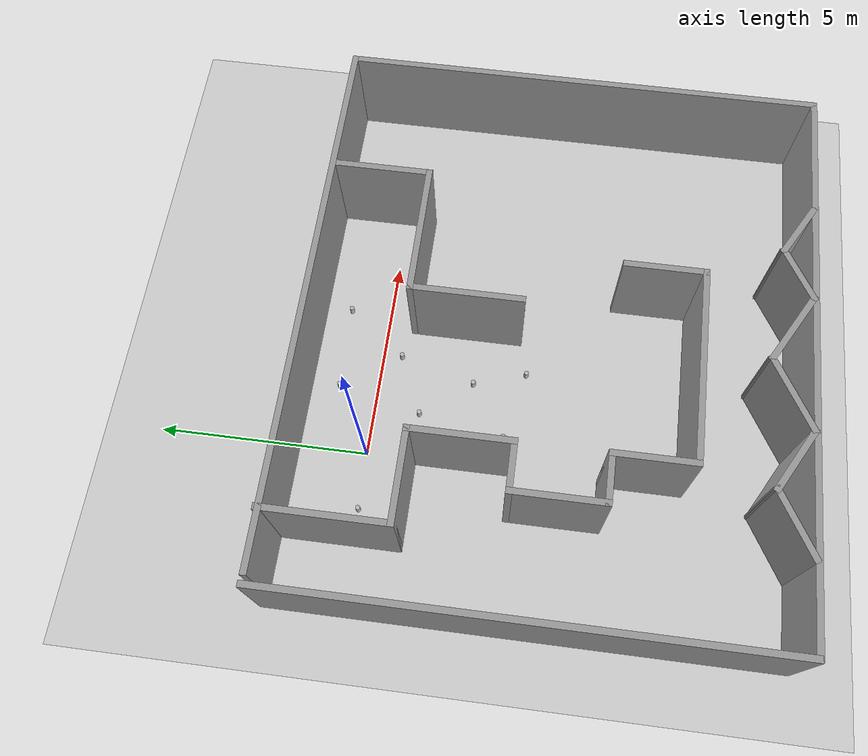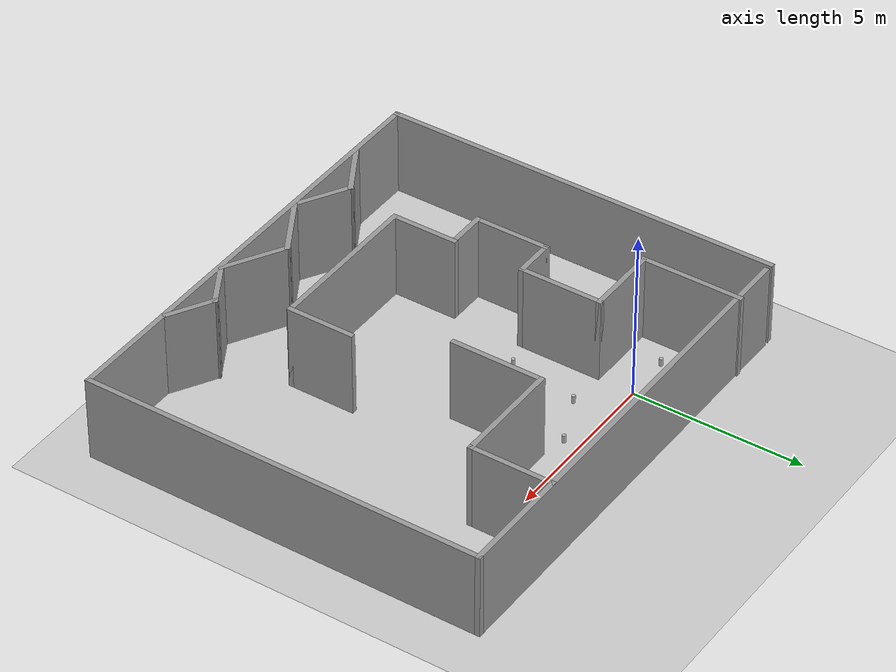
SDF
<sdf version="1.7">
 <world name="default">
  <light name="sun" type="directional">
   <pose>0 0 10 0 -0 0</pose>
   <diffuse>0.8 0.8 0.8 1</diffuse>
   <specular>0.2 0.2 0.2 1</specular>
   <attenuation>
    <range>1000</range>
    <constant>0.9</constant>
    <linear>0.01</linear>
    <quadratic>0.001</quadratic>
   </attenuation>
   <direction>-0.5 0.1 -0.9</direction>
   <spot><inner_angle>0</inner_angle><outer_angle>0</outer_angle><falloff>0</falloff></spot>
  </light>
  <model name="ground_plane">
   <static>1</static>
   <link name="link">
    <collision name="collision">
     <geometry><plane><normal>0 0 1</normal><size>100 100</size></plane></geometry>
     <surface><friction><ode><mu>100</mu><mu2>50</mu2></ode></friction></surface>
    </collision>
    <visual name="visual">
     <cast_shadows>0</cast_shadows>
     <geometry><plane><normal>0 0 1</normal><size>100 100</size></plane></geometry>
     <material>
      <script><uri>file://media/materials/scripts/gazebo.material</uri><name>Gazebo/Grey</name></script>
     </material>
    </visual>
   </link>
  </model>
  <gravity>0 0 -9.8</gravity>
  <magnetic_field>6e-06 2.3e-05 -4.2e-05</magnetic_field>
  <atmosphere type="adiabatic"/>
  <physics type="ode">
   <max_step_size>0.001</max_step_size>
   <real_time_factor>1</real_time_factor>
   <real_time_update_rate>1000</real_time_update_rate>
  </physics>
  <scene><ambient>0.4 0.4 0.4 1</ambient><background>0.7 0.7 0.7 1</background><shadows>1</shadows></scene>
  <spherical_coordinates>
   <surface_model>EARTH_WGS84</surface_model>
   <latitude_deg>0</latitude_deg>
   <longitude_deg>0</longitude_deg>
   <elevation>0</elevation>
   <heading_deg>0</heading_deg>
  </spherical_coordinates>
  <model name="walls">
   <pose>2.94182 -4.0688 0 0 -0 0</pose>
   <link name="Wall_11">
    <collision name="Wall_11_Collision">
     <geometry><box><size>3 0.15 2.5</size></box></geometry>
     <pose>0 0 1.25 0 -0 0</pose>
    </collision>
    <visual name="Wall_11_Visual">
     <pose>0 0 1.25 0 -0 0</pose>
     <geometry><box><size>3 0.15 2.5</size></box></geometry>
     <material>
      <script><uri>file://media/materials/scripts/gazebo.material</uri><name>Gazebo/Grey</name></script>
      <ambient>1 1 1 1</ambient>
     </material>
     <meta><layer>0</layer></meta>
    </visual>
    <pose>-5.07342 4.39742 0 0 -0 -1.5708</pose>
   </link>
   <link name="Wall_12">
    <collision name="Wall_12_Collision">
     <geometry><box><size>2.25 0.15 2.5</size></box></geometry>
     <pose>0 0 1.25 0 -0 0</pose>
    </collision>
    <visual name="Wall_12_Visual">
     <pose>0 0 1.25 0 -0 0</pose>
     <geometry><box><size>2.25 0.15 2.5</size></box></geometry>
     <material>
      <script><uri>file://media/materials/scripts/gazebo.material</uri><name>Gazebo/Grey</name></script>
      <ambient>1 1 1 1</ambient>
     </material>
     <meta><layer>0</layer></meta>
    </visual>
    <pose>-4.02342 2.97242 0 0 -0 0</pose>
   </link>
   <link name="Wall_13">
    <collision name="Wall_13_Collision">
     <geometry><box><size>2.5 0.15 2.5</size></box></geometry>
     <pose>0 0 1.25 0 -0 0</pose>
    </collision>
    <visual name="Wall_13_Visual">
     <pose>0 0 1.25 0 -0 0</pose>
     <geometry><box><size>2.5 0.15 2.5</size></box></geometry>
     <material>
      <script><uri>file://media/materials/scripts/gazebo.material</uri><name>Gazebo/Grey</name></script>
      <ambient>1 1 1 1</ambient>
     </material>
     <meta><layer>0</layer></meta>
    </visual>
    <pose>-2.97342 1.79742 0 0 -0 -1.5708</pose>
   </link>
   <link name="Wall_14">
    <collision name="Wall_14_Collision">
     <geometry><box><size>1.25 0.15 2.5</size></box></geometry>
     <pose>0 0 1.25 0 -0 0</pose>
    </collision>
    <visual name="Wall_14_Visual">
     <pose>0 0 1.25 0 -0 0</pose>
     <geometry><box><size>1.25 0.15 2.5</size></box></geometry>
     <material>
      <script><uri>file://media/materials/scripts/gazebo.material</uri><name>Gazebo/Grey</name></script>
      <ambient>1 1 1 1</ambient>
     </material>
     <meta><layer>0</layer></meta>
    </visual>
    <pose>-3.52342 0.622418 0 0 -0 3.14159</pose>
   </link>
   <link name="Wall_15">
    <collision name="Wall_15_Collision">
     <geometry><box><size>2.25 0.15 2.5</size></box></geometry>
     <pose>0 0 1.25 0 -0 0</pose>
    </collision>
    <visual name="Wall_15_Visual">
     <pose>0 0 1.25 0 -0 0</pose>
     <geometry><box><size>2.25 0.15 2.5</size></box></geometry>
     <material>
      <script><uri>file://media/materials/scripts/gazebo.material</uri><name>Gazebo/Grey</name></script>
      <ambient>1 1 1 1</ambient>
     </material>
     <meta><layer>0</layer></meta>
    </visual>
    <pose>-4.07342 -0.427582 0 0 -0 -1.5708</pose>
   </link>
   <link name="Wall_16">
    <collision name="Wall_16_Collision">
     <geometry><box><size>1.25 0.15 2.5</size></box></geometry>
     <pose>0 0 1.25 0 -0 0</pose>
    </collision>
    <visual name="Wall_16_Visual">
     <pose>0 0 1.25 0 -0 0</pose>
     <geometry><box><size>1.25 0.15 2.5</size></box></geometry>
     <material>
      <script><uri>file://media/materials/scripts/gazebo.material</uri><name>Gazebo/Grey</name></script>
      <ambient>1 1 1 1</ambient>
     </material>
     <meta><layer>0</layer></meta>
    </visual>
    <pose>-3.52342 -1.47758 0 0 -0 0</pose>
   </link>
   <link name="Wall_17">
    <collision name="Wall_17_Collision">
     <geometry><box><size>2 0.15 2.5</size></box></geometry>
     <pose>0 0 1.25 0 -0 0</pose>
    </collision>
    <visual name="Wall_17_Visual">
     <pose>0 0 1.25 0 -0 0</pose>
     <geometry><box><size>2 0.15 2.5</size></box></geometry>
     <material>
      <script><uri>file://media/materials/scripts/gazebo.material</uri><name>Gazebo/Grey</name></script>
      <ambient>1 1 1 1</ambient>
     </material>
     <meta><layer>0</layer></meta>
    </visual>
    <pose>-2.97342 -2.40258 0 0 -0 -1.5708</pose>
   </link>
   <link name="Wall_18">
    <collision name="Wall_18_Collision">
     <geometry><box><size>4.75 0.15 2.5</size></box></geometry>
     <pose>0 0 1.25 0 -0 0</pose>
    </collision>
    <visual name="Wall_18_Visual">
     <pose>0 0 1.25 0 -0 0</pose>
     <geometry><box><size>4.75 0.15 2.5</size></box></geometry>
     <material>
      <script><uri>file://media/materials/scripts/gazebo.material</uri><name>Gazebo/Grey</name></script>
      <ambient>1 1 1 1</ambient>
     </material>
     <meta><layer>0</layer></meta>
    </visual>
    <pose>-0.673416 -3.32758 0 0 -0 0</pose>
   </link>
   <link name="Wall_19">
    <collision name="Wall_19_Collision">
     <geometry><box><size>2 0.15 2.5</size></box></geometry>
     <pose>0 0 1.25 0 -0 0</pose>
    </collision>
    <visual name="Wall_19_Visual">
     <pose>0 0 1.25 0 -0 0</pose>
     <geometry><box><size>2 0.15 2.5</size></box></geometry>
     <material>
      <script><uri>file://media/materials/scripts/gazebo.material</uri><name>Gazebo/Grey</name></script>
      <ambient>1 1 1 1</ambient>
     </material>
     <meta><layer>0</layer></meta>
    </visual>
    <pose>1.62658 -2.40258 0 0 -0 1.5708</pose>
   </link>
   <link name="Wall_23">
    <collision name="Wall_23_Collision">
     <geometry><box><size>2.5 0.15 2.5</size></box></geometry>
     <pose>0 0 1.25 0 -0 0</pose>
    </collision>
    <visual name="Wall_23_Visual">
     <pose>0 0 1.25 0 -0 0</pose>
     <geometry><box><size>2.5 0.15 2.5</size></box></geometry>
     <material>
      <script><uri>file://media/materials/scripts/gazebo.material</uri><name>Gazebo/Grey</name></script>
      <ambient>1 1 1 1</ambient>
     </material>
     <meta><layer>0</layer></meta>
    </visual>
    <pose>3.50717 4.58824 0 0 -0 -1.5708</pose>
   </link>
   <link name="Wall_24">
    <collision name="Wall_24_Collision">
     <geometry><box><size>3.25 0.15 2.5</size></box></geometry>
     <pose>0 0 1.25 0 -0 0</pose>
    </collision>
    <visual name="Wall_24_Visual">
     <pose>0 0 1.25 0 -0 0</pose>
     <geometry><box><size>3.25 0.15 2.5</size></box></geometry>
     <material>
      <script><uri>file://media/materials/scripts/gazebo.material</uri><name>Gazebo/Grey</name></script>
      <ambient>1 1 1 1</ambient>
     </material>
     <meta><layer>0</layer></meta>
    </visual>
    <pose>1.95717 3.41324 0 0 -0 3.14159</pose>
   </link>
   <link name="Wall_25">
    <collision name="Wall_25_Collision">
     <geometry><box><size>2.75 0.15 2.5</size></box></geometry>
     <pose>0 0 1.25 0 -0 0</pose>
    </collision>
    <visual name="Wall_25_Visual">
     <pose>0 0 1.25 0 -0 0</pose>
     <geometry><box><size>2.75 0.15 2.5</size></box></geometry>
     <material>
      <script><uri>file://media/materials/scripts/gazebo.material</uri><name>Gazebo/Grey</name></script>
      <ambient>1 1 1 1</ambient>
     </material>
     <meta><layer>0</layer></meta>
    </visual>
    <pose>0.40717 2.11324 0 0 -0 -1.5708</pose>
   </link>
   <link name="Wall_29">
    <collision name="Wall_29_Collision">
     <geometry><box><size>1.75 0.15 2.5</size></box></geometry>
     <pose>0 0 1.25 0 -0 0</pose>
    </collision>
    <visual name="Wall_29_Visual">
     <pose>0 0 1.25 0 -0 0</pose>
     <geometry><box><size>1.75 0.15 2.5</size></box></geometry>
     <material>
      <script><uri>file://media/materials/scripts/gazebo.material</uri><name>Gazebo/Grey</name></script>
      <ambient>1 1 1 1</ambient>
     </material>
     <meta><layer>0</layer></meta>
    </visual>
    <pose>-4.02554 -5.37617 0 0 -0 0.523599</pose>
   </link>
   <link name="Wall_30">
    <collision name="Wall_30_Collision">
     <geometry><box><size>1.75 0.15 2.5</size></box></geometry>
     <pose>0 0 1.25 0 -0 0</pose>
    </collision>
    <visual name="Wall_30_Visual">
     <pose>0 0 1.25 0 -0 0</pose>
     <geometry><box><size>1.75 0.15 2.5</size></box></geometry>
     <material>
      <script><uri>file://media/materials/scripts/gazebo.material</uri><name>Gazebo/Grey</name></script>
      <ambient>1 1 1 1</ambient>
     </material>
     <meta><layer>0</layer></meta>
    </visual>
    <pose>-2.6399 -5.37617 0 0 -0 -0.523599</pose>
   </link>
   <link name="Wall_31">
    <collision name="Wall_31_Collision">
     <geometry><box><size>2 0.15 2.5</size></box></geometry>
     <pose>0 0 1.25 0 -0 0</pose>
    </collision>
    <visual name="Wall_31_Visual">
     <pose>0 0 1.25 0 -0 0</pose>
     <geometry><box><size>2 0.15 2.5</size></box></geometry>
     <material>
      <script><uri>file://media/materials/scripts/gazebo.material</uri><name>Gazebo/Grey</name></script>
      <ambient>1 1 1 1</ambient>
     </material>
     <meta><layer>0</layer></meta>
    </visual>
    <pose>-1.146 -5.31367 0 0 -0 0.523599</pose>
   </link>
   <link name="Wall_32">
    <collision name="Wall_32_Collision">
     <geometry><box><size>2 0.15 2.5</size></box></geometry>
     <pose>0 0 1.25 0 -0 0</pose>
    </collision>
    <visual name="Wall_32_Visual">
     <pose>0 0 1.25 0 -0 0</pose>
     <geometry><box><size>2 0.15 2.5</size></box></geometry>
     <material>
      <script><uri>file://media/materials/scripts/gazebo.material</uri><name>Gazebo/Grey</name></script>
      <ambient>1 1 1 1</ambient>
     </material>
     <meta><layer>0</layer></meta>
    </visual>
    <pose>0.456144 -5.31367 0 0 -0 -0.523599</pose>
   </link>
   <link name="Wall_33">
    <collision name="Wall_33_Collision">
     <geometry><box><size>1.5 0.15 2.5</size></box></geometry>
     <pose>0 0 1.25 0 -0 0</pose>
    </collision>
    <visual name="Wall_33_Visual">
     <pose>0 0 1.25 0 -0 0</pose>
     <geometry><box><size>1.5 0.15 2.5</size></box></geometry>
     <material>
      <script><uri>file://media/materials/scripts/gazebo.material</uri><name>Gazebo/Grey</name></script>
      <ambient>1 1 1 1</ambient>
     </material>
     <meta><layer>0</layer></meta>
    </visual>
    <pose>1.84179 -5.43867 0 0 -0 0.523599</pose>
   </link>
   <link name="Wall_34">
    <collision name="Wall_34_Collision">
     <geometry><box><size>1.5 0.15 2.5</size></box></geometry>
     <pose>0 0 1.25 0 -0 0</pose>
    </collision>
    <visual name="Wall_34_Visual">
     <pose>0 0 1.25 0 -0 0</pose>
     <geometry><box><size>1.5 0.15 2.5</size></box></geometry>
     <material>
      <script><uri>file://media/materials/scripts/gazebo.material</uri><name>Gazebo/Grey</name></script>
      <ambient>1 1 1 1</ambient>
     </material>
     <meta><layer>0</layer></meta>
    </visual>
    <pose>3.01092 -5.43867 0 0 -0 -0.523599</pose>
   </link>
   <link name="Wall_6">
    <collision name="Wall_6_Collision">
     <geometry><box><size>11.75 0.15 2.5</size></box></geometry>
     <pose>0 0 1.25 0 -0 0</pose>
    </collision>
    <visual name="Wall_6_Visual">
     <pose>0 0 1.25 0 -0 0</pose>
     <geometry><box><size>11.75 0.15 2.5</size></box></geometry>
     <material>
      <script><uri>file://media/materials/scripts/gazebo.material</uri><name>Gazebo/Grey</name></script>
      <ambient>1 1 1 1</ambient>
     </material>
     <meta><layer>0</layer></meta>
    </visual>
    <pose>-6.675 -0.022417 0 0 -0 -1.5708</pose>
   </link>
   <link name="Wall_7">
    <collision name="Wall_7_Collision">
     <geometry><box><size>13.5 0.15 2.5</size></box></geometry>
     <pose>0 0 1.25 0 -0 0</pose>
    </collision>
    <visual name="Wall_7_Visual">
     <pose>0 0 1.25 0 -0 0</pose>
     <geometry><box><size>13.5 0.15 2.5</size></box></geometry>
     <material>
      <script><uri>file://media/materials/scripts/gazebo.material</uri><name>Gazebo/Grey</name></script>
      <ambient>1 1 1 1</ambient>
     </material>
     <meta><layer>0</layer></meta>
    </visual>
    <pose>0 -5.82242 0 0 -0 0</pose>
   </link>
   <link name="Wall_8">
    <collision name="Wall_8_Collision">
     <geometry><box><size>11.75 0.15 2.5</size></box></geometry>
     <pose>0 0 1.25 0 -0 0</pose>
    </collision>
    <visual name="Wall_8_Visual">
     <pose>0 0 1.25 0 -0 0</pose>
     <geometry><box><size>11.75 0.15 2.5</size></box></geometry>
     <material>
      <script><uri>file://media/materials/scripts/gazebo.material</uri><name>Gazebo/Grey</name></script>
      <ambient>1 1 1 1</ambient>
     </material>
     <meta><layer>0</layer></meta>
    </visual>
    <pose>6.675 -0.022417 0 0 -0 1.5708</pose>
   </link>
   <link name="Wall_9">
    <collision name="Wall_9_Collision">
     <geometry><box><size>13.25 0.15 2.5</size></box></geometry>
     <pose>0 0 1.25 0 -0 0</pose>
    </collision>
    <visual name="Wall_9_Visual">
     <pose>0 0 1.25 0 -0 0</pose>
     <geometry><box><size>13.25 0.15 2.5</size></box></geometry>
     <material>
      <script><uri>file://media/materials/scripts/gazebo.material</uri><name>Gazebo/Grey</name></script>
      <ambient>1 1 1 1</ambient>
     </material>
     <meta><layer>0</layer></meta>
    </visual>
    <pose>0.125 5.77758 0 0 -0 3.14159</pose>
   </link>
   <static>1</static>
  </model>
  <model name="beer">
   <link name="link">
    <pose>0 0 0.115 0 -0 0</pose>
    <inertial>
     <mass>0.39</mass>
     <inertia><ixx>0.00058</ixx><ixy>0</ixy><ixz>0</ixz><iyy>0.00058</iyy><iyz>0</iyz><izz>0.00019</izz></inertia>
    </inertial>
    <collision name="collision">
     <geometry><cylinder><radius>0.055</radius><length>0.23</length></cylinder></geometry>
    </collision>
    <visual name="visual">
     <geometry><cylinder><radius>0.055</radius><length>0.23</length></cylinder></geometry>
     <material>
      <script>
       <uri>model://beer/materials/scripts</uri>
       <uri>model://beer/materials/textures</uri>
       <name>Beer/Diffuse</name>
      </script>
     </material>
    </visual>
   </link>
   <pose>1.63604 0.953295 -2e-06 0 -0 -2e-05</pose>
  </model>
  <model name="beer_0">
   <link name="link">
    <pose>0 0 0.115 0 -0 0</pose>
    <inertial>
     <mass>0.39</mass>
     <inertia><ixx>0.00058</ixx><ixy>0</ixy><ixz>0</ixz><iyy>0.00058</iyy><iyz>0</iyz><izz>0.00019</izz></inertia>
    </inertial>
    <collision name="collision">
     <geometry><cylinder><radius>0.055</radius><length>0.23</length></cylinder></geometry>
    </collision>
    <visual name="visual">
     <geometry><cylinder><radius>0.055</radius><length>0.23</length></cylinder></geometry>
     <material>
      <script>
       <uri>model://beer/materials/scripts</uri>
       <uri>model://beer/materials/textures</uri>
       <name>Beer/Diffuse</name>
      </script>
     </material>
    </visual>
   </link>
   <pose>1.15153 -1.07924 -7e-06 -1e-06 -0 -1.9e-05</pose>
  </model>
  <model name="beer_1">
   <link name="link">
    <pose>0 0 0.115 0 -0 0</pose>
    <inertial>
     <mass>0.39</mass>
     <inertia><ixx>0.00058</ixx><ixy>0</ixy><ixz>0</ixz><iyy>0.00058</iyy><iyz>0</iyz><izz>0.00019</izz></inertia>
    </inertial>
    <collision name="collision">
     <geometry><cylinder><radius>0.055</radius><length>0.23</length></cylinder></geometry>
    </collision>
    <visual name="visual">
     <geometry><cylinder><radius>0.055</radius><length>0.23</length></cylinder></geometry>
     <material>
      <script>
       <uri>model://beer/materials/scripts</uri>
       <uri>model://beer/materials/textures</uri>
       <name>Beer/Diffuse</name>
      </script>
     </material>
    </visual>
   </link>
   <pose>2.57885 -0.441564 -2e-06 0 -0 -1.8e-05</pose>
  </model>
  <model name="beer_2">
   <link name="link">
    <pose>0 0 0.115 0 -0 0</pose>
    <inertial>
     <mass>0.39</mass>
     <inertia><ixx>0.00058</ixx><ixy>0</ixy><ixz>0</ixz><iyy>0.00058</iyy><iyz>0</iyz><izz>0.00019</izz></inertia>
    </inertial>
    <collision name="collision">
     <geometry><cylinder><radius>0.055</radius><length>0.23</length></cylinder></geometry>
    </collision>
    <visual name="visual">
     <geometry><cylinder><radius>0.055</radius><length>0.23</length></cylinder></geometry>
     <material>
      <script>
       <uri>model://beer/materials/scripts</uri>
       <uri>model://beer/materials/textures</uri>
       <name>Beer/Diffuse</name>
      </script>
     </material>
    </visual>
   </link>
   <pose>-1.34961 -0.019421 -7e-06 -1e-06 -0 -1.7e-05</pose>
  </model>
  <model name="beer_3">
   <link name="link">
    <pose>0 0 0.115 0 -0 0</pose>
    <inertial>
     <mass>0.39</mass>
     <inertia><ixx>0.00058</ixx><ixy>0</ixy><ixz>0</ixz><iyy>0.00058</iyy><iyz>0</iyz><izz>0.00019</izz></inertia>
    </inertial>
    <collision name="collision">
     <geometry><cylinder><radius>0.055</radius><length>0.23</length></cylinder></geometry>
    </collision>
    <visual name="visual">
     <geometry><cylinder><radius>0.055</radius><length>0.23</length></cylinder></geometry>
     <material>
      <script>
       <uri>model://beer/materials/scripts</uri>
       <uri>model://beer/materials/textures</uri>
       <name>Beer/Diffuse</name>
      </script>
     </material>
    </visual>
   </link>
   <pose>2.07686 -2.27881 -7e-06 -1e-06 -0 -1.6e-05</pose>
  </model>
  <model name="beer_4">
   <link name="link">
    <pose>0 0 0.115 0 -0 0</pose>
    <inertial>
     <mass>0.39</mass>
     <inertia><ixx>0.00058</ixx><ixy>0</ixy><ixz>0</ixz><iyy>0.00058</iyy><iyz>0</iyz><izz>0.00019</izz></inertia>
    </inertial>
    <collision name="collision">
     <geometry><cylinder><radius>0.055</radius><length>0.23</length></cylinder></geometry>
    </collision>
    <visual name="visual">
     <geometry><cylinder><radius>0.055</radius><length>0.23</length></cylinder></geometry>
     <material>
      <script>
       <uri>model://beer/materials/scripts</uri>
       <uri>model://beer/materials/textures</uri>
       <name>Beer/Diffuse</name>
      </script>
     </material>
    </visual>
   </link>
   <pose>0.790518 -3.15766 -2e-06 0 -0 -1.5e-05</pose>
  </model>
  <model name="beer_5">
   <link name="link">
    <pose>0 0 0.115 0 -0 0</pose>
    <inertial>
     <mass>0.39</mass>
     <inertia><ixx>0.00058</ixx><ixy>0</ixy><ixz>0</ixz><iyy>0.00058</iyy><iyz>0</iyz><izz>0.00019</izz></inertia>
    </inertial>
    <collision name="collision">
     <geometry><cylinder><radius>0.055</radius><length>0.23</length></cylinder></geometry>
    </collision>
    <visual name="visual">
     <geometry><cylinder><radius>0.055</radius><length>0.23</length></cylinder></geometry>
     <material>
      <script>
       <uri>model://beer/materials/scripts</uri>
       <uri>model://beer/materials/textures</uri>
       <name>Beer/Diffuse</name>
      </script>
     </material>
    </visual>
   </link>
   <pose>2.4776 -3.54104 -2e-06 0 -0 -1.4e-05</pose>
  </model>
  <model name="beer_6">
   <link name="link">
    <pose>0 0 0.115 0 -0 0</pose>
    <inertial>
     <mass>0.39</mass>
     <inertia><ixx>0.00058</ixx><ixy>0</ixy><ixz>0</ixz><iyy>0.00058</iyy><iyz>0</iyz><izz>0.00019</izz></inertia>
    </inertial>
    <collision name="collision">
     <geometry><cylinder><radius>0.055</radius><length>0.23</length></cylinder></geometry>
    </collision>
    <visual name="visual">
     <geometry><cylinder><radius>0.055</radius><length>0.23</length></cylinder></geometry>
     <material>
      <script>
       <uri>model://beer/materials/scripts</uri>
       <uri>model://beer/materials/textures</uri>
       <name>Beer/Diffuse</name>
      </script>
     </material>
    </visual>
   </link>
   <pose>3.67829 1.00715 -2e-06 1e-06 -0 -1.3e-05</pose>
  </model>
 </world>
</sdf>
